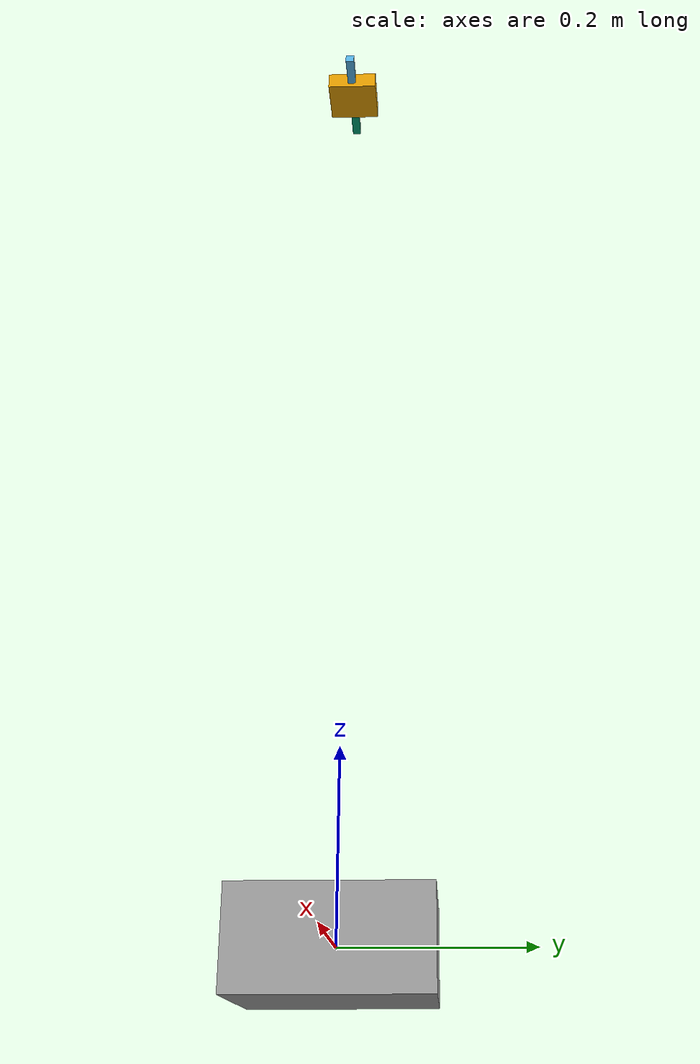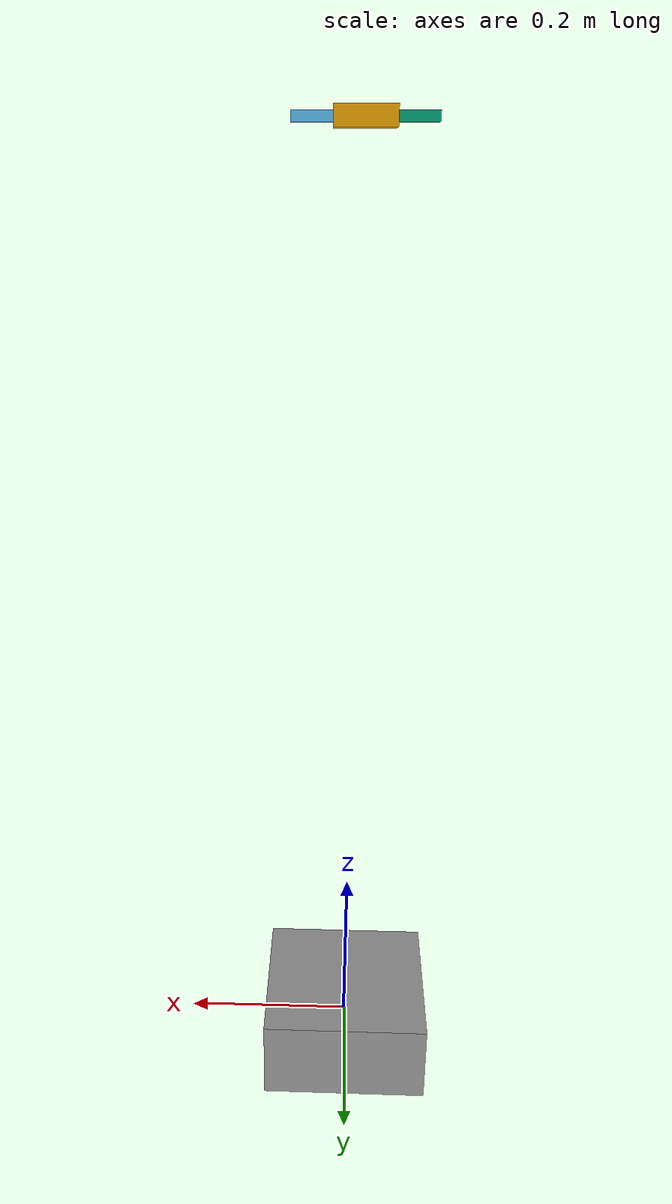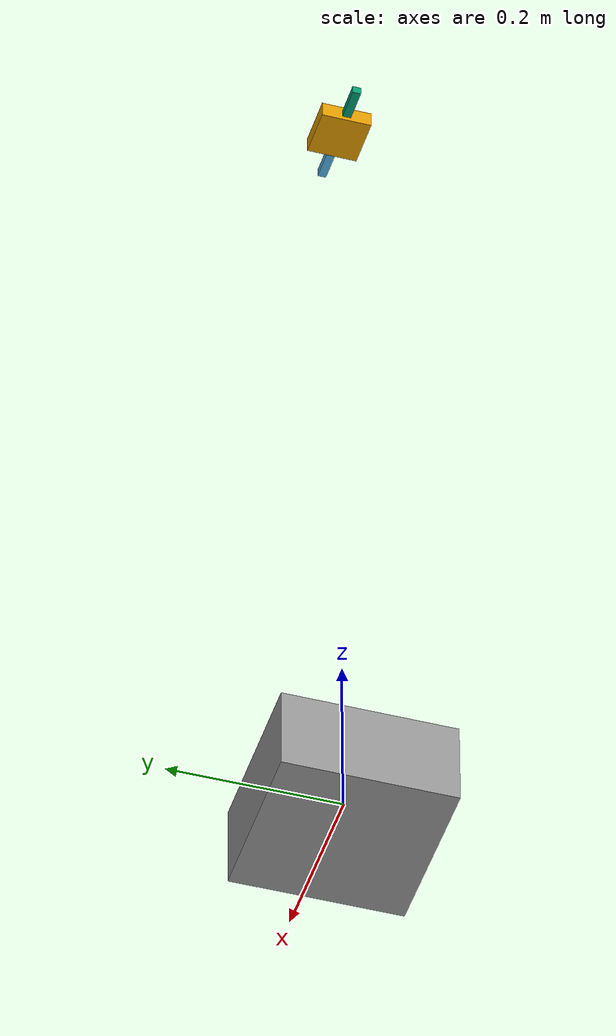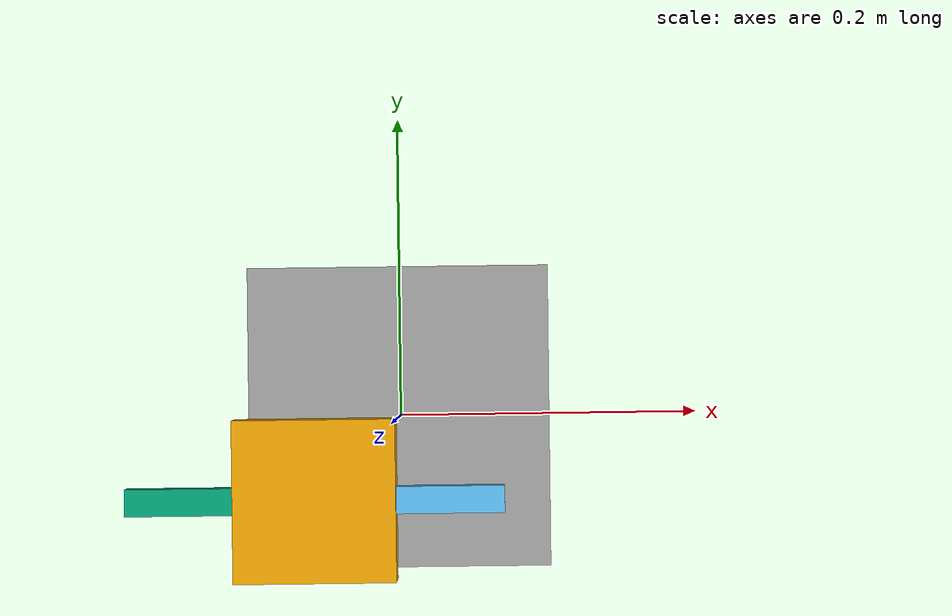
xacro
<?xml version="1.0"?>
<robot name="ur10e_with_dummy_gripper" xmlns:xacro="http://www.ros.org/wiki/xacro">

  <!-- Simplified UR10e-like chain (minimal, self-contained) -->
  <!-- base_link -->
  <link name="base_link">
    <inertial>
      <mass value="5.0"/>
      <inertia ixx="0.1" ixy="0.0" ixz="0.0" iyy="0.1" iyz="0.0" izz="0.1"/>
    </inertial>
    <visual>
      <geometry><box size="0.2 0.2 0.1"/></geometry>
      <material name="grey"/>
    </visual>
    <collision><geometry><box size="0.2 0.2 0.1"/></geometry></collision>
  </link>

  <!-- Joints and intermediate links (simplified lengths/origins) -->
  <joint name="shoulder_pan_joint" type="revolute">
    <parent link="base_link"/>
    <child link="shoulder_link"/>
    <origin xyz="0 0 0.1" rpy="0 0 0"/>
    <axis xyz="0 0 1"/>
    <limit lower="-3.14" upper="3.14" effort="150" velocity="1.5"/>
  </joint>
  <link name="shoulder_link"/>

  <joint name="shoulder_lift_joint" type="revolute">
    <parent link="shoulder_link"/>
    <child link="upper_arm_link"/>
    <origin xyz="0 0 0.1" rpy="0 0 0"/>
    <axis xyz="0 1 0"/>
    <limit lower="-3.14" upper="3.14" effort="150" velocity="1.5"/>
  </joint>
  <link name="upper_arm_link"/>

  <joint name="elbow_joint" type="revolute">
    <parent link="upper_arm_link"/>
    <child link="forearm_link"/>
    <origin xyz="0 0 0.3" rpy="0 0 0"/>
    <axis xyz="0 1 0"/>
    <limit lower="-3.14" upper="3.14" effort="150" velocity="1.5"/>
  </joint>
  <link name="forearm_link"/>

  <joint name="wrist_1_joint" type="revolute">
    <parent link="forearm_link"/>
    <child link="wrist_1_link"/>
    <origin xyz="0 0 0.25" rpy="0 0 0"/>
    <axis xyz="0 1 0"/>
    <limit lower="-3.14" upper="3.14" effort="28" velocity="1.5"/>
  </joint>
  <link name="wrist_1_link"/>

  <joint name="wrist_2_joint" type="revolute">
    <parent link="wrist_1_link"/>
    <child link="wrist_2_link"/>
    <origin xyz="0 0 0.1" rpy="0 0 0"/>
    <axis xyz="0 0 1"/>
    <limit lower="-3.14" upper="3.14" effort="28" velocity="1.5"/>
  </joint>
  <link name="wrist_2_link"/>

  <joint name="wrist_3_joint" type="revolute">
    <parent link="wrist_2_link"/>
    <child link="wrist_3_link"/>
    <origin xyz="0 0 0.1" rpy="0 0 0"/>
    <axis xyz="0 1 0"/>
    <limit lower="-3.14" upper="3.14" effort="28" velocity="1.5"/>
  </joint>
  <link name="wrist_3_link"/>

  <!-- End effector (ee_link) -->
  <link name="ee_link"/>
  <joint name="ee_fixed_joint" type="fixed">
    <parent link="wrist_3_link"/>
    <child link="ee_link"/>
    <origin xyz="0 0 0.05" rpy="0 0 0"/>
  </joint>

  <!-- Simple Dummy Gripper(two small boxes, fixed to ee_link) -->
  <link name="dummy_gripper_base">
    <visual>
      <origin xyz="0 0 0" rpy="0 0 0"/>
      <geometry><box size="0.06 0.06 0.02"/></geometry>
    </visual>
    <collision><geometry><box size="0.06 0.06 0.02"/></geometry></collision>
  </link>

  <joint name="dummy_gripper_mount" type="fixed">
    <parent link="ee_link"/>
    <child link="dummy_gripper_base"/>
    <origin xyz="0 0 0.06" rpy="0 0 0"/>
  </joint>

  <link name="dummy_left_finger">
    <visual>
      <origin xyz="0.03 0 0" rpy="0 0 0"/>
      <geometry><box size="0.04 0.01 0.01"/></geometry>
    </visual>
    <collision><geometry><box size="0.04 0.01 0.01"/></geometry></collision>
  </link>

  <link name="dummy_right_finger">
    <visual>
      <origin xyz="-0.03 0 0" rpy="0 0 0"/>
      <geometry><box size="0.04 0.01 0.01"/></geometry>
    </visual>
    <collision><geometry><box size="0.04 0.01 0.01"/></geometry></collision>
  </link>

  <joint name="dummy_left_fixed" type="fixed">
    <parent link="dummy_gripper_base"/>
    <child link="dummy_left_finger"/>
    <origin xyz="0.02 0 0" rpy="0 0 0"/>
  </joint>

  <joint name="dummy_right_fixed" type="fixed">
    <parent link="dummy_gripper_base"/>
    <child link="dummy_right_finger"/>
    <origin xyz="-0.02 0 0" rpy="0 0 0"/>
  </joint>

  <!-- minimal transmission placeholder to avoid some tools complaining (safe as fixed gripper) -->
  <transmission name="dummy_gripper_trans">
    <type>transmission_interface/SimpleTransmission</type>
    <joint name="dummy_left_fixed"/>
    <actuator name="gripper_actuator"/>
  </transmission>

</robot>
